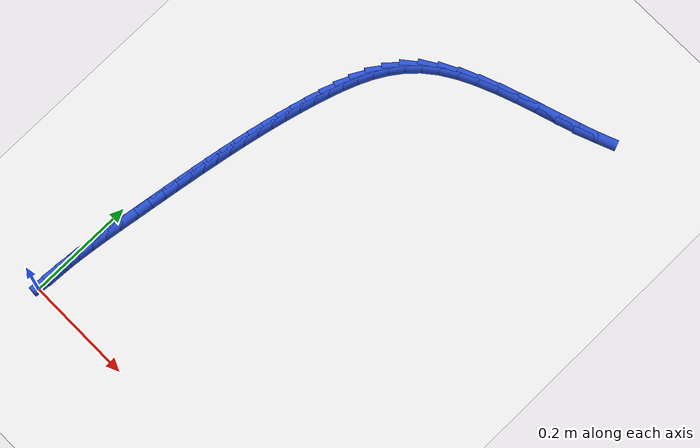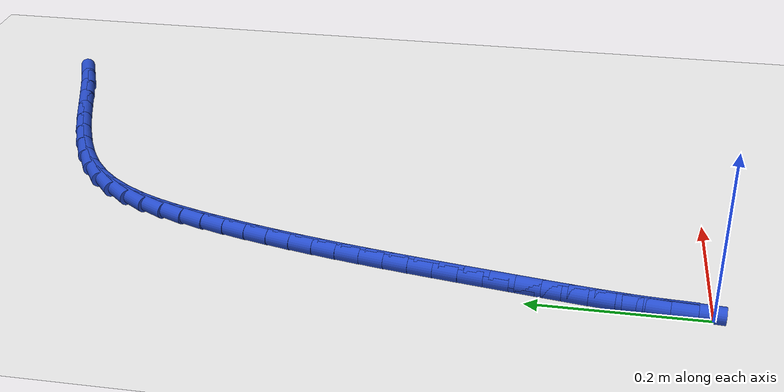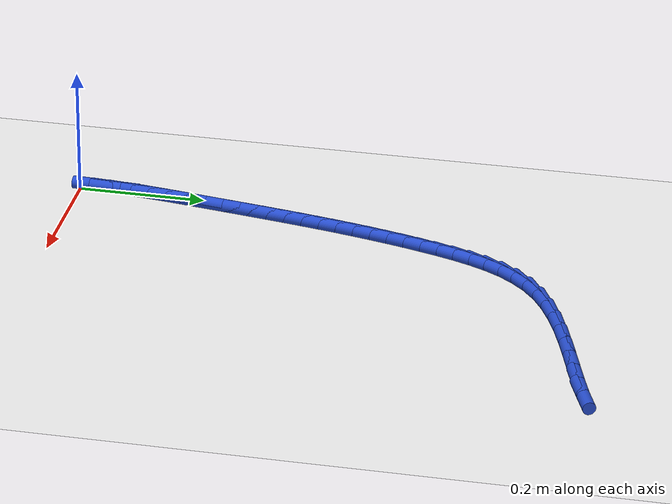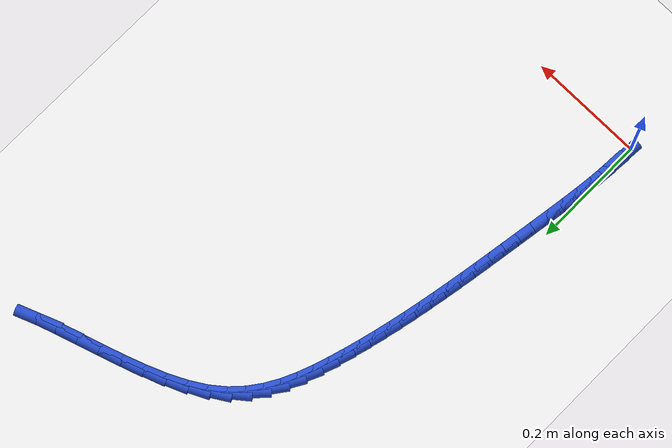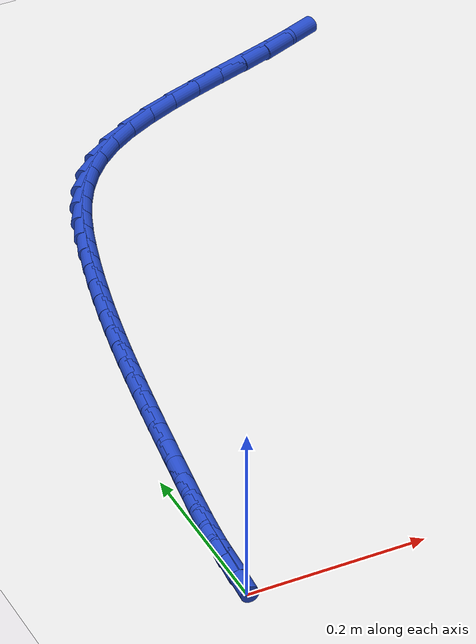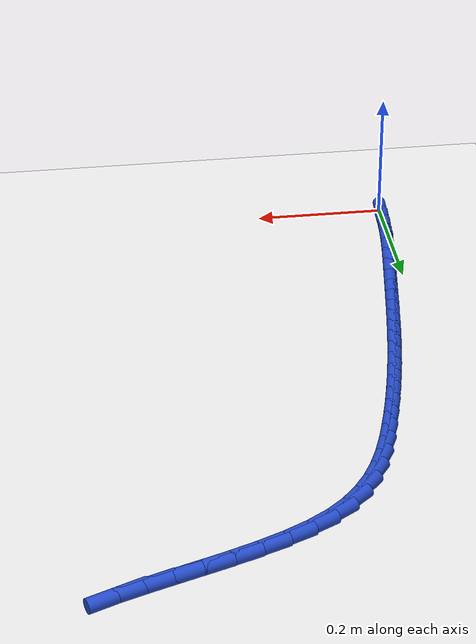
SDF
<sdf version="1.6">
 <world name="default">
  <model name="ground_plane">
   <static>1</static>
   <link name="link">
    <collision name="collision">
     <geometry><plane><normal>0 0 1</normal><size>100 100</size></plane></geometry>
     <surface><friction><ode><mu>100</mu><mu2>50</mu2></ode></friction></surface>
    </collision>
    <visual name="visual">
     <cast_shadows>0</cast_shadows>
     <geometry><plane><normal>0 0 1</normal><size>100 100</size></plane></geometry>
     <material>
      <script><uri>file://media/materials/scripts/gazebo.material</uri><name>Gazebo/WhiteGlow</name></script>
     </material>
    </visual>
   </link>
  </model>
  <model name="line">
   <link name="link_2">
    <pose>0.0026621797684854044 0.056887238127899954 0.01 0 1.57 1.478518253073047</pose>
    <collision name="collision">
     <geometry><cylinder><radius>0.01</radius><length>0.08</length></cylinder></geometry>
    </collision>
    <visual name="visual">
     <material>
      <script><name>Gazebo/Blue</name><uri>file://media/materials/scripts/gazebo.material</uri></script>
     </material>
     <geometry><cylinder><radius>0.01</radius><length>0.08</length></cylinder></geometry>
    </visual>
   </link>
   <link name="link_3">
    <pose>0.005298386868711799 0.08537418085504456 0.01 0 1.57 1.4554868831947467</pose>
    <collision name="collision">
     <geometry><cylinder><radius>0.01</radius><length>0.08</length></cylinder></geometry>
    </collision>
    <visual name="visual">
     <material>
      <script><name>Gazebo/Blue</name><uri>file://media/materials/scripts/gazebo.material</uri></script>
     </material>
     <geometry><cylinder><radius>0.01</radius><length>0.08</length></cylinder></geometry>
    </visual>
   </link>
   <link name="link_4">
    <pose>0.008599982542327878 0.11387964941765724 0.01 0 1.57 1.4378553510148429</pose>
    <collision name="collision">
     <geometry><cylinder><radius>0.01</radius><length>0.08</length></cylinder></geometry>
    </collision>
    <visual name="visual">
     <material>
      <script><name>Gazebo/Blue</name><uri>file://media/materials/scripts/gazebo.material</uri></script>
     </material>
     <geometry><cylinder><radius>0.01</radius><length>0.08</length></cylinder></geometry>
    </visual>
   </link>
   <link name="link_5">
    <pose>0.01241344961138406 0.14239587636074186 0.01 0 1.57 1.4255454582067757</pose>
    <collision name="collision">
     <geometry><cylinder><radius>0.01</radius><length>0.08</length></cylinder></geometry>
    </collision>
    <visual name="visual">
     <material>
      <script><name>Gazebo/Blue</name><uri>file://media/materials/scripts/gazebo.material</uri></script>
     </material>
     <geometry><cylinder><radius>0.01</radius><length>0.08</length></cylinder></geometry>
    </visual>
   </link>
   <link name="link_6">
    <pose>0.01658527089793076 0.17091509422930218 0.01 0 1.57 1.4184957335514032</pose>
    <collision name="collision">
     <geometry><cylinder><radius>0.01</radius><length>0.08</length></cylinder></geometry>
    </collision>
    <visual name="visual">
     <material>
      <script><name>Gazebo/Blue</name><uri>file://media/materials/scripts/gazebo.material</uri></script>
     </material>
     <geometry><cylinder><radius>0.01</radius><length>0.08</length></cylinder></geometry>
    </visual>
   </link>
   <link name="link_7">
    <pose>0.020961929224018398 0.19942953556834195 0.01 0 1.57 1.416561746177899</pose>
    <collision name="collision">
     <geometry><cylinder><radius>0.01</radius><length>0.08</length></cylinder></geometry>
    </collision>
    <visual name="visual">
     <material>
      <script><name>Gazebo/Blue</name><uri>file://media/materials/scripts/gazebo.material</uri></script>
     </material>
     <geometry><cylinder><radius>0.01</radius><length>0.08</length></cylinder></geometry>
    </visual>
   </link>
   <link name="link_8">
    <pose>0.025393094095717324 0.2279313953311967 0.01 0 1.57 1.4165939329463293</pose>
    <collision name="collision">
     <geometry><cylinder><radius>0.01</radius><length>0.08</length></cylinder></geometry>
    </collision>
    <visual name="visual">
     <material>
      <script><name>Gazebo/Blue</name><uri>file://media/materials/scripts/gazebo.material</uri></script>
     </material>
     <geometry><cylinder><radius>0.01</radius><length>0.08</length></cylinder></geometry>
    </visual>
   </link>
   <link name="link_9">
    <pose>0.029819982731004866 0.25641178853004715 0.01 0 1.57 1.415054781798703</pose>
    <collision name="collision">
     <geometry><cylinder><radius>0.01</radius><length>0.08</length></cylinder></geometry>
    </collision>
    <visual name="visual">
     <material>
      <script><name>Gazebo/Blue</name><uri>file://media/materials/scripts/gazebo.material</uri></script>
     </material>
     <geometry><cylinder><radius>0.01</radius><length>0.08</length></cylinder></geometry>
    </visual>
   </link>
   <link name="link_10">
    <pose>0.034286820481480816 0.28486061504323323 0.01 0 1.57 1.4117509719548476</pose>
    <collision name="collision">
     <geometry><cylinder><radius>0.01</radius><length>0.08</length></cylinder></geometry>
    </collision>
    <visual name="visual">
     <material>
      <script><name>Gazebo/Blue</name><uri>file://media/materials/scripts/gazebo.material</uri></script>
     </material>
     <geometry><cylinder><radius>0.01</radius><length>0.08</length></cylinder></geometry>
    </visual>
   </link>
   <link name="link_11">
    <pose>0.0388433214675514 0.31326771000091974 0.01 0 1.57 1.4066768287680638</pose>
    <collision name="collision">
     <geometry><cylinder><radius>0.01</radius><length>0.08</length></cylinder></geometry>
    </collision>
    <visual name="visual">
     <material>
      <script><name>Gazebo/Blue</name><uri>file://media/materials/scripts/gazebo.material</uri></script>
     </material>
     <geometry><cylinder><radius>0.01</radius><length>0.08</length></cylinder></geometry>
    </visual>
   </link>
   <link name="link_12">
    <pose>0.04353919980962284 0.3416229085332708 0.01 0 1.57 1.3998262561881691</pose>
    <collision name="collision">
     <geometry><cylinder><radius>0.01</radius><length>0.08</length></cylinder></geometry>
    </collision>
    <visual name="visual">
     <material>
      <script><name>Gazebo/Blue</name><uri>file://media/materials/scripts/gazebo.material</uri></script>
     </material>
     <geometry><cylinder><radius>0.01</radius><length>0.08</length></cylinder></geometry>
    </visual>
   </link>
   <link name="link_13">
    <pose>0.04842416962810139 0.3699160457704513 0.01 0 1.57 1.3911932111306324</pose>
    <collision name="collision">
     <geometry><cylinder><radius>0.01</radius><length>0.08</length></cylinder></geometry>
    </collision>
    <visual name="visual">
     <material>
      <script><name>Gazebo/Blue</name><uri>file://media/materials/scripts/gazebo.material</uri></script>
     </material>
     <geometry><cylinder><radius>0.01</radius><length>0.08</length></cylinder></geometry>
    </visual>
   </link>
   <link name="link_14">
    <pose>0.05354794504339329 0.39813695684262534 0.01 0 1.57 1.3807723533890224</pose>
    <collision name="collision">
     <geometry><cylinder><radius>0.01</radius><length>0.08</length></cylinder></geometry>
    </collision>
    <visual name="visual">
     <material>
      <script><name>Gazebo/Blue</name><uri>file://media/materials/scripts/gazebo.material</uri></script>
     </material>
     <geometry><cylinder><radius>0.01</radius><length>0.08</length></cylinder></geometry>
    </visual>
   </link>
   <link name="link_15">
    <pose>0.05896024017590473 0.42627547687995776 0.01 0 1.57 1.36855987432062</pose>
    <collision name="collision">
     <geometry><cylinder><radius>0.01</radius><length>0.08</length></cylinder></geometry>
    </collision>
    <visual name="visual">
     <material>
      <script><name>Gazebo/Blue</name><uri>file://media/materials/scripts/gazebo.material</uri></script>
     </material>
     <geometry><cylinder><radius>0.01</radius><length>0.08</length></cylinder></geometry>
    </visual>
   </link>
   <link name="link_16">
    <pose>0.064710769146042 0.45432144101261285 0.01 0 1.57 1.3545545047957068</pose>
    <collision name="collision">
     <geometry><cylinder><radius>0.01</radius><length>0.08</length></cylinder></geometry>
    </collision>
    <visual name="visual">
     <material>
      <script><name>Gazebo/Blue</name><uri>file://media/materials/scripts/gazebo.material</uri></script>
     </material>
     <geometry><cylinder><radius>0.01</radius><length>0.08</length></cylinder></geometry>
    </visual>
   </link>
   <link name="link_17">
    <pose>0.07084924607421131 0.4822646843707552 0.01 0 1.57 1.338758698098818</pose>
    <collision name="collision">
     <geometry><cylinder><radius>0.01</radius><length>0.08</length></cylinder></geometry>
    </collision>
    <visual name="visual">
     <material>
      <script><name>Gazebo/Blue</name><uri>file://media/materials/scripts/gazebo.material</uri></script>
     </material>
     <geometry><cylinder><radius>0.01</radius><length>0.08</length></cylinder></geometry>
    </visual>
   </link>
   <link name="link_18">
    <pose>0.07742538508081884 0.510095042084549 0.01 0 1.57 1.321179976192636</pose>
    <collision name="collision">
     <geometry><cylinder><radius>0.01</radius><length>0.08</length></cylinder></geometry>
    </collision>
    <visual name="visual">
     <material>
      <script><name>Gazebo/Blue</name><uri>file://media/materials/scripts/gazebo.material</uri></script>
     </material>
     <geometry><cylinder><radius>0.01</radius><length>0.08</length></cylinder></geometry>
    </visual>
   </link>
   <link name="link_19">
    <pose>0.0844889002862709 0.5378023492841593 0.01 0 1.57 1.301832417706088</pose>
    <collision name="collision">
     <geometry><cylinder><radius>0.01</radius><length>0.08</length></cylinder></geometry>
    </collision>
    <visual name="visual">
     <material>
      <script><name>Gazebo/Blue</name><uri>file://media/materials/scripts/gazebo.material</uri></script>
     </material>
     <geometry><cylinder><radius>0.01</radius><length>0.08</length></cylinder></geometry>
    </visual>
   </link>
   <link name="link_20">
    <pose>0.09208950581097375 0.5653764410997506 0.01 0 1.57 1.2807316998429104</pose>
    <collision name="collision">
     <geometry><cylinder><radius>0.01</radius><length>0.08</length></cylinder></geometry>
    </collision>
    <visual name="visual">
     <material>
      <script><name>Gazebo/Blue</name><uri>file://media/materials/scripts/gazebo.material</uri></script>
     </material>
     <geometry><cylinder><radius>0.01</radius><length>0.08</length></cylinder></geometry>
    </visual>
   </link>
   <link name="link_21">
    <pose>0.10027708227318881 0.5928070545724404 0.01 0 1.57 1.2532982697472423</pose>
    <collision name="collision">
     <geometry><cylinder><radius>0.01</radius><length>0.08</length></cylinder></geometry>
    </collision>
    <visual name="visual">
     <material>
      <script><name>Gazebo/Blue</name><uri>file://media/materials/scripts/gazebo.material</uri></script>
     </material>
     <geometry><cylinder><radius>0.01</radius><length>0.08</length></cylinder></geometry>
    </visual>
   </link>
   <link name="link_22">
    <pose>0.10921810005387658 0.6200152401009511 0.01 0 1.57 1.2067108393101946</pose>
    <collision name="collision">
     <geometry><cylinder><radius>0.01</radius><length>0.08</length></cylinder></geometry>
    </collision>
    <visual name="visual">
     <material>
      <script><name>Gazebo/Blue</name><uri>file://media/materials/scripts/gazebo.material</uri></script>
     </material>
     <geometry><cylinder><radius>0.01</radius><length>0.08</length></cylinder></geometry>
    </visual>
   </link>
   <link name="link_23">
    <pose>0.11939962139971863 0.646733177480566 0.01 0 1.57 1.138481220074589</pose>
    <collision name="collision">
     <geometry><cylinder><radius>0.01</radius><length>0.08</length></cylinder></geometry>
    </collision>
    <visual name="visual">
     <material>
      <script><name>Gazebo/Blue</name><uri>file://media/materials/scripts/gazebo.material</uri></script>
     </material>
     <geometry><cylinder><radius>0.01</radius><length>0.08</length></cylinder></geometry>
    </visual>
   </link>
   <link name="link_24">
    <pose>0.13136333243768894 0.672660865885859 0.01 0 1.57 1.0487787142938838</pose>
    <collision name="collision">
     <geometry><cylinder><radius>0.01</radius><length>0.08</length></cylinder></geometry>
    </collision>
    <visual name="visual">
     <material>
      <script><name>Gazebo/Blue</name><uri>file://media/materials/scripts/gazebo.material</uri></script>
     </material>
     <geometry><cylinder><radius>0.01</radius><length>0.08</length></cylinder></geometry>
    </visual>
   </link>
   <link name="link_25">
    <pose>0.14565091929476146 0.6974983044914046 0.01 0 1.57 0.939198202641608</pose>
    <collision name="collision">
     <geometry><cylinder><radius>0.01</radius><length>0.08</length></cylinder></geometry>
    </collision>
    <visual name="visual">
     <material>
      <script><name>Gazebo/Blue</name><uri>file://media/materials/scripts/gazebo.material</uri></script>
     </material>
     <geometry><cylinder><radius>0.01</radius><length>0.08</length></cylinder></geometry>
    </visual>
   </link>
   <link name="link_26">
    <pose>0.16280406809791018 0.7209454924717771 0.01 0 1.57 0.8136660345742998</pose>
    <collision name="collision">
     <geometry><cylinder><radius>0.01</radius><length>0.08</length></cylinder></geometry>
    </collision>
    <visual name="visual">
     <material>
      <script><name>Gazebo/Blue</name><uri>file://media/materials/scripts/gazebo.material</uri></script>
     </material>
     <geometry><cylinder><radius>0.01</radius><length>0.08</length></cylinder></geometry>
    </visual>
   </link>
   <link name="link_27">
    <pose>0.18336446497410896 0.7427024290015501 0.01 0 1.57 0.6787059309352872</pose>
    <collision name="collision">
     <geometry><cylinder><radius>0.01</radius><length>0.08</length></cylinder></geometry>
    </collision>
    <visual name="visual">
     <material>
      <script><name>Gazebo/Blue</name><uri>file://media/materials/scripts/gazebo.material</uri></script>
     </material>
     <geometry><cylinder><radius>0.01</radius><length>0.08</length></cylinder></geometry>
    </visual>
   </link>
   <link name="link_28">
    <pose>0.20787326473798368 0.7624693472510563 0.01 0 1.57 0.5515470152467176</pose>
    <collision name="collision">
     <geometry><cylinder><radius>0.01</radius><length>0.08</length></cylinder></geometry>
    </collision>
    <visual name="visual">
     <material>
      <script><name>Gazebo/Blue</name><uri>file://media/materials/scripts/gazebo.material</uri></script>
     </material>
     <geometry><cylinder><radius>0.01</radius><length>0.08</length></cylinder></geometry>
    </visual>
   </link>
   <link name="link_29">
    <pose>0.23652710004693395 0.7800982117087109 0.01 0 1.57 0.4567981321654271</pose>
    <collision name="collision">
     <geometry><cylinder><radius>0.01</radius><length>0.08</length></cylinder></geometry>
    </collision>
    <visual name="visual">
     <material>
      <script><name>Gazebo/Blue</name><uri>file://media/materials/scripts/gazebo.material</uri></script>
     </material>
     <geometry><cylinder><radius>0.01</radius><length>0.08</length></cylinder></geometry>
    </visual>
   </link>
   <link name="link_30">
    <pose>0.2685853200939517 0.7958537767299718 0.01 0 1.57 0.39021845529984667</pose>
    <collision name="collision">
     <geometry><cylinder><radius>0.01</radius><length>0.08</length></cylinder></geometry>
    </collision>
    <visual name="visual">
     <material>
      <script><name>Gazebo/Blue</name><uri>file://media/materials/scripts/gazebo.material</uri></script>
     </material>
     <geometry><cylinder><radius>0.01</radius><length>0.08</length></cylinder></geometry>
    </visual>
   </link>
   <link name="link_31">
    <pose>0.30314938492295745 0.8100703327747175 0.01 0 1.57 0.34531435196308385</pose>
    <collision name="collision">
     <geometry><cylinder><radius>0.01</radius><length>0.08</length></cylinder></geometry>
    </collision>
    <visual name="visual">
     <material>
      <script><name>Gazebo/Blue</name><uri>file://media/materials/scripts/gazebo.material</uri></script>
     </material>
     <geometry><cylinder><radius>0.01</radius><length>0.08</length></cylinder></geometry>
    </visual>
   </link>
   <link name="link_32">
    <pose>0.3393207545778715 0.8230821703028263 0.01 0 1.57 0.31803743105901944</pose>
    <collision name="collision">
     <geometry><cylinder><radius>0.01</radius><length>0.08</length></cylinder></geometry>
    </collision>
    <visual name="visual">
     <material>
      <script><name>Gazebo/Blue</name><uri>file://media/materials/scripts/gazebo.material</uri></script>
     </material>
     <geometry><cylinder><radius>0.01</radius><length>0.08</length></cylinder></geometry>
    </visual>
   </link>
   <link name="link_33">
    <pose>0.37620088910261407 0.8352235797741762 0.01 0 1.57 0.30634578979641996</pose>
    <collision name="collision">
     <geometry><cylinder><radius>0.01</radius><length>0.08</length></cylinder></geometry>
    </collision>
    <visual name="visual">
     <material>
      <script><name>Gazebo/Blue</name><uri>file://media/materials/scripts/gazebo.material</uri></script>
     </material>
     <geometry><cylinder><radius>0.01</radius><length>0.08</length></cylinder></geometry>
    </visual>
   </link>
   <link name="link_34">
    <pose>0.41289124854110515 0.8468288516486453 0.01 0 1.57 0.30997734498890184</pose>
    <collision name="collision">
     <geometry><cylinder><radius>0.01</radius><length>0.08</length></cylinder></geometry>
    </collision>
    <visual name="visual">
     <material>
      <script><name>Gazebo/Blue</name><uri>file://media/materials/scripts/gazebo.material</uri></script>
     </material>
     <geometry><cylinder><radius>0.01</radius><length>0.08</length></cylinder></geometry>
    </visual>
   </link>
   <link name="link_35">
    <pose>0.4484932929372652 0.858232276386112 0.01 0 1.57 0.3305810963488139</pose>
    <collision name="collision">
     <geometry><cylinder><radius>0.01</radius><length>0.08</length></cylinder></geometry>
    </collision>
    <visual name="visual">
     <material>
      <script><name>Gazebo/Blue</name><uri>file://media/materials/scripts/gazebo.material</uri></script>
     </material>
     <geometry><cylinder><radius>0.01</radius><length>0.08</length></cylinder></geometry>
    </visual>
   </link>
   <link name="link_36">
    <pose>0.48210848233501463 0.8697681444464549 0.01 0 1.57 0.3723638851385659</pose>
    <collision name="collision">
     <geometry><cylinder><radius>0.01</radius><length>0.08</length></cylinder></geometry>
    </collision>
    <visual name="visual">
     <material>
      <script><name>Gazebo/Blue</name><uri>file://media/materials/scripts/gazebo.material</uri></script>
     </material>
     <geometry><cylinder><radius>0.01</radius><length>0.08</length></cylinder></geometry>
    </visual>
   </link>
   <link name="link_291">
    <pose>0.0008852482329624444 0.02843213238450189 0.01 0 1.57 1.4972474729840939</pose>
    <collision name="collision">
     <geometry><cylinder><radius>0.01</radius><length>0.08</length></cylinder></geometry>
    </collision>
    <visual name="visual">
     <material>
      <script><name>Gazebo/Blue</name><uri>file://media/materials/scripts/gazebo.material</uri></script>
     </material>
     <geometry><cylinder><radius>0.01</radius><length>0.08</length></cylinder></geometry>
    </visual>
   </link>
   <link name="link_292">
    <pose>0.00298513827539907 0.0569315876741659 0.01 0 1.57 1.5184105209575907</pose>
    <collision name="collision">
     <geometry><cylinder><radius>0.01</radius><length>0.08</length></cylinder></geometry>
    </collision>
    <visual name="visual">
     <material>
      <script><name>Gazebo/Blue</name><uri>file://media/materials/scripts/gazebo.material</uri></script>
     </material>
     <geometry><cylinder><radius>0.01</radius><length>0.08</length></cylinder></geometry>
    </visual>
   </link>
  </model>
 </world>
</sdf>
